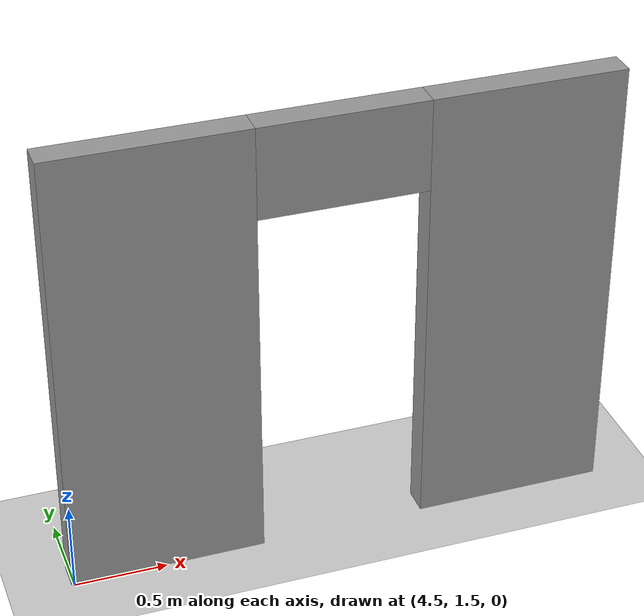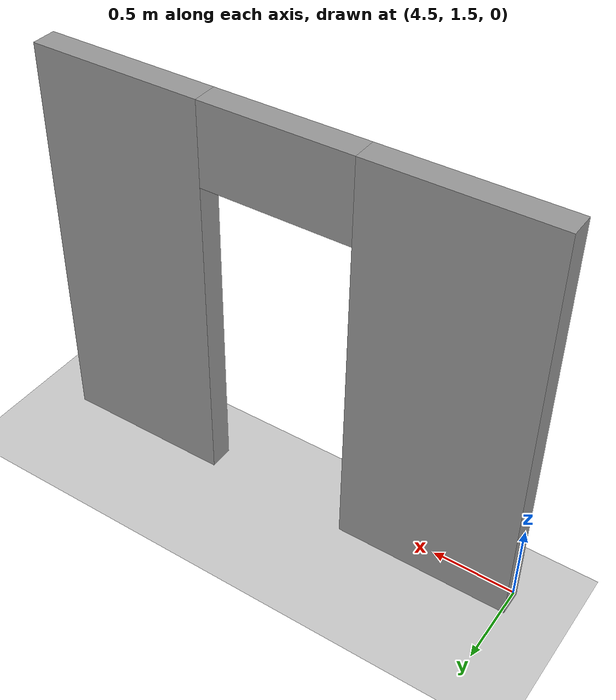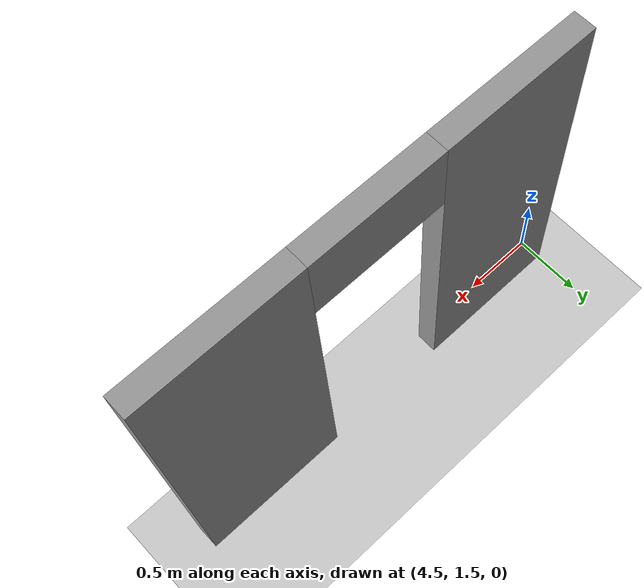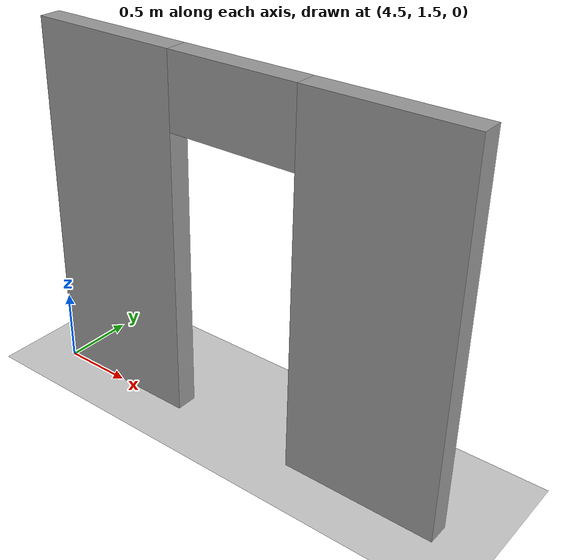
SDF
<sdf version="1.7">
 <world name="default">
  <model name="ground_plane">
   <static>1</static>
   <link name="link">
    <collision name="collision">
     <geometry><plane><normal>0 0 1</normal><size>100 100</size></plane></geometry>
     <surface>
      <contact><collide_bitmask>65535</collide_bitmask></contact>
      <friction><ode><mu>100</mu><mu2>50</mu2></ode></friction>
     </surface>
    </collision>
    <visual name="visual">
     <cast_shadows>0</cast_shadows>
     <geometry><plane><normal>0 0 1</normal><size>100 100</size></plane></geometry>
     <material>
      <script><uri>file://media/materials/scripts/gazebo.material</uri><name>Gazebo/Grey</name></script>
     </material>
    </visual>
   </link>
  </model>
  <model name="my_building_p4">
   <link name="Wall_44">
    <pose>6 -1.38492 0 0 -0 3.14159</pose>
    <visual name="Wall_44_Visual_2">
     <pose>-0.006131 0 2.25 0 -0 0</pose>
     <geometry><box><size>0.9 0.15 0.5</size></box></geometry>
     <material>
      <script><uri>file://media/materials/scripts/gazebo.material</uri><name>Gazebo/Grey</name></script>
      <ambient>1 1 1 1</ambient>
      <shader type="pixel"/>
     </material>
     <meta><layer>0</layer></meta>
    </visual>
    <visual name="Wall_44_Visual_0">
     <pose>-0.978065 0 1.25 0 -0 0</pose>
     <geometry><box><size>1.04387 0.15 2.5</size></box></geometry>
     <material>
      <script><uri>file://media/materials/scripts/gazebo.material</uri><name>Gazebo/Grey</name></script>
      <ambient>1 1 1 1</ambient>
      <shader type="pixel"/>
     </material>
     <meta><layer>0</layer></meta>
    </visual>
    <visual name="Wall_44_Visual_1">
     <pose>0.971935 0 1.25 0 -0 0</pose>
     <geometry><box><size>1.05613 0.15 2.5</size></box></geometry>
     <material>
      <script><uri>file://media/materials/scripts/gazebo.material</uri><name>Gazebo/Grey</name></script>
      <ambient>1 1 1 1</ambient>
      <shader type="pixel"/>
     </material>
     <meta><layer>0</layer></meta>
    </visual>
    <collision name="Wall_44_Collision_1">
     <pose>0.971935 0 1.25 0 -0 0</pose>
     <geometry><box><size>1.05613 0.15 2.5</size></box></geometry>
     <surface>
      <friction>
       <ode><mu>1</mu><mu2>1</mu2><fdir1>0 0 0</fdir1><slip1>0</slip1><slip2>0</slip2></ode>
       <torsional>
        <coefficient>1</coefficient>
        <patch_radius>0</patch_radius>
        <surface_radius>0</surface_radius>
        <use_patch_radius>1</use_patch_radius>
        <ode><slip>0</slip></ode>
       </torsional>
      </friction>
      <bounce><restitution_coefficient>0</restitution_coefficient><threshold>1e+06</threshold></bounce>
      <contact>
       <collide_without_contact>0</collide_without_contact>
       <collide_without_contact_bitmask>1</collide_without_contact_bitmask>
       <collide_bitmask>1</collide_bitmask>
       <ode>
        <soft_cfm>0</soft_cfm>
        <soft_erp>0.2</soft_erp>
        <kp>1e+13</kp>
        <kd>1</kd>
        <max_vel>0.01</max_vel>
        <min_depth>0</min_depth>
       </ode>
       <bullet>
        <split_impulse>1</split_impulse>
        <split_impulse_penetration_threshold>-0.01</split_impulse_penetration_threshold>
        <soft_cfm>0</soft_cfm>
        <soft_erp>0.2</soft_erp>
        <kp>1e+13</kp>
        <kd>1</kd>
       </bullet>
      </contact>
     </surface>
    </collision>
    <collision name="Wall_44_Collision_0">
     <pose>-0.978065 0 1.25 0 -0 0</pose>
     <geometry><box><size>1.04387 0.15 2.5</size></box></geometry>
     <surface>
      <friction>
       <ode><mu>1</mu><mu2>1</mu2><fdir1>0 0 0</fdir1><slip1>0</slip1><slip2>0</slip2></ode>
       <torsional>
        <coefficient>1</coefficient>
        <patch_radius>0</patch_radius>
        <surface_radius>0</surface_radius>
        <use_patch_radius>1</use_patch_radius>
        <ode><slip>0</slip></ode>
       </torsional>
      </friction>
      <bounce><restitution_coefficient>0</restitution_coefficient><threshold>1e+06</threshold></bounce>
      <contact>
       <collide_without_contact>0</collide_without_contact>
       <collide_without_contact_bitmask>1</collide_without_contact_bitmask>
       <collide_bitmask>1</collide_bitmask>
       <ode>
        <soft_cfm>0</soft_cfm>
        <soft_erp>0.2</soft_erp>
        <kp>1e+13</kp>
        <kd>1</kd>
        <max_vel>0.01</max_vel>
        <min_depth>0</min_depth>
       </ode>
       <bullet>
        <split_impulse>1</split_impulse>
        <split_impulse_penetration_threshold>-0.01</split_impulse_penetration_threshold>
        <soft_cfm>0</soft_cfm>
        <soft_erp>0.2</soft_erp>
        <kp>1e+13</kp>
        <kd>1</kd>
       </bullet>
      </contact>
     </surface>
    </collision>
    <collision name="Wall_44_Collision_2">
     <pose>-0.006131 0 2.25 0 -0 0</pose>
     <geometry><box><size>0.9 0.15 0.5</size></box></geometry>
     <surface>
      <friction>
       <ode><mu>1</mu><mu2>1</mu2><fdir1>0 0 0</fdir1><slip1>0</slip1><slip2>0</slip2></ode>
       <torsional>
        <coefficient>1</coefficient>
        <patch_radius>0</patch_radius>
        <surface_radius>0</surface_radius>
        <use_patch_radius>1</use_patch_radius>
        <ode><slip>0</slip></ode>
       </torsional>
      </friction>
      <bounce><restitution_coefficient>0</restitution_coefficient><threshold>1e+06</threshold></bounce>
      <contact>
       <collide_without_contact>0</collide_without_contact>
       <collide_without_contact_bitmask>1</collide_without_contact_bitmask>
       <collide_bitmask>1</collide_bitmask>
       <ode>
        <soft_cfm>0</soft_cfm>
        <soft_erp>0.2</soft_erp>
        <kp>1e+13</kp>
        <kd>1</kd>
        <max_vel>0.01</max_vel>
        <min_depth>0</min_depth>
       </ode>
       <bullet>
        <split_impulse>1</split_impulse>
        <split_impulse_penetration_threshold>-0.01</split_impulse_penetration_threshold>
        <soft_cfm>0</soft_cfm>
        <soft_erp>0.2</soft_erp>
        <kp>1e+13</kp>
        <kd>1</kd>
       </bullet>
      </contact>
     </surface>
    </collision>
   </link>
   <static>1</static>
   <pose>-0.017657 2.964 0 0 -0 0</pose>
  </model>
 </world>
</sdf>
